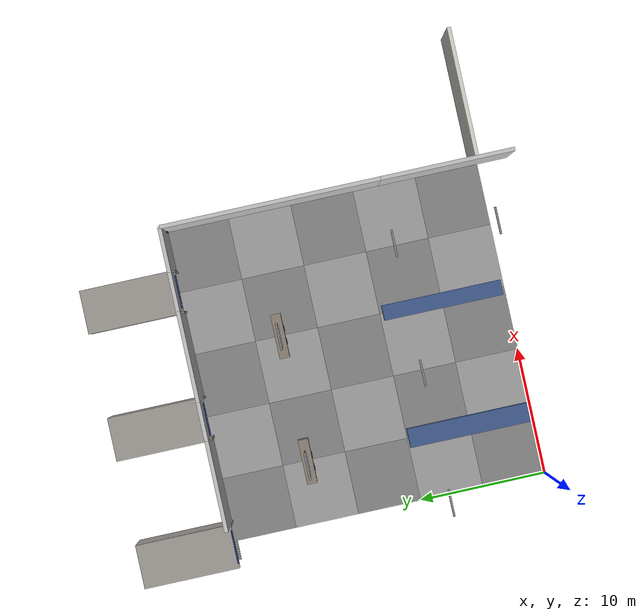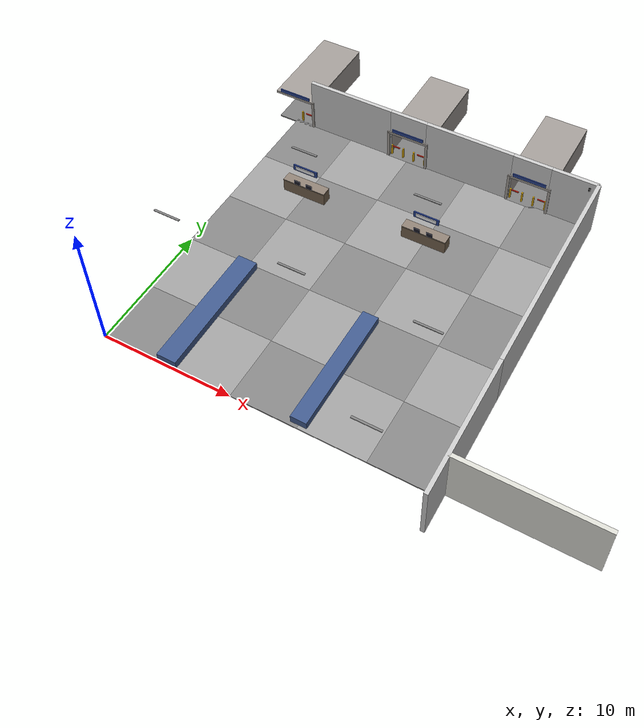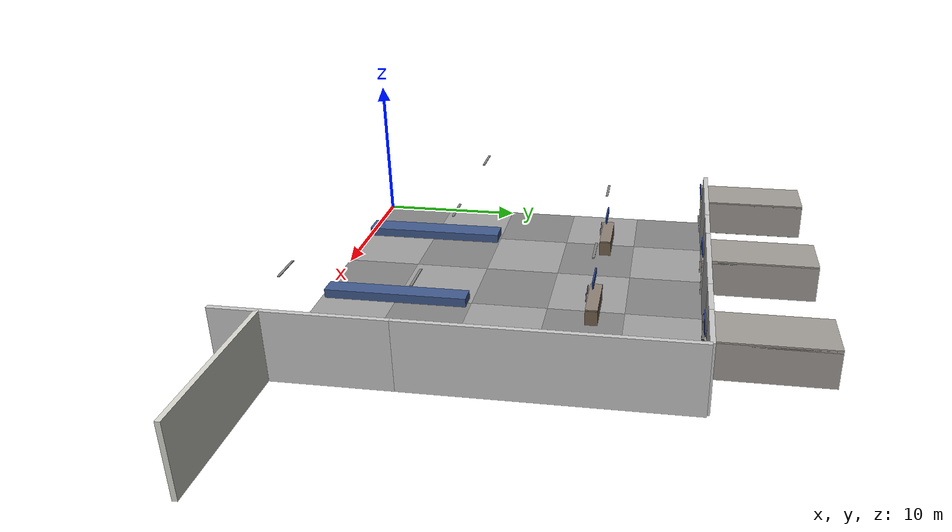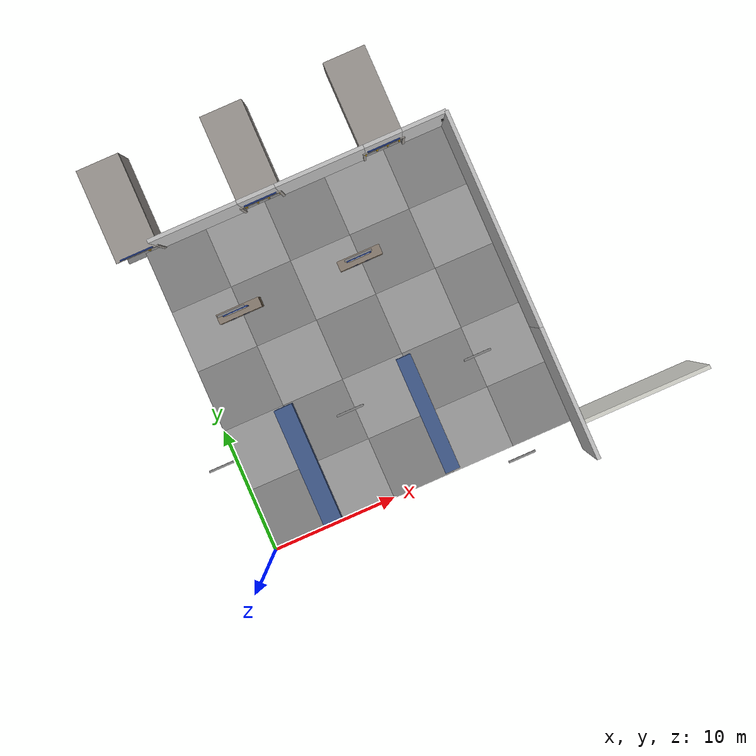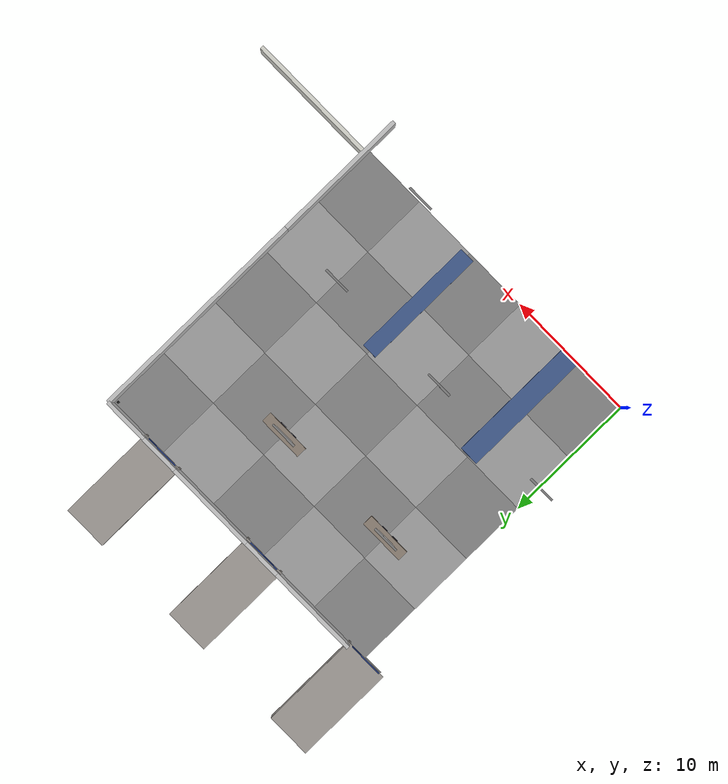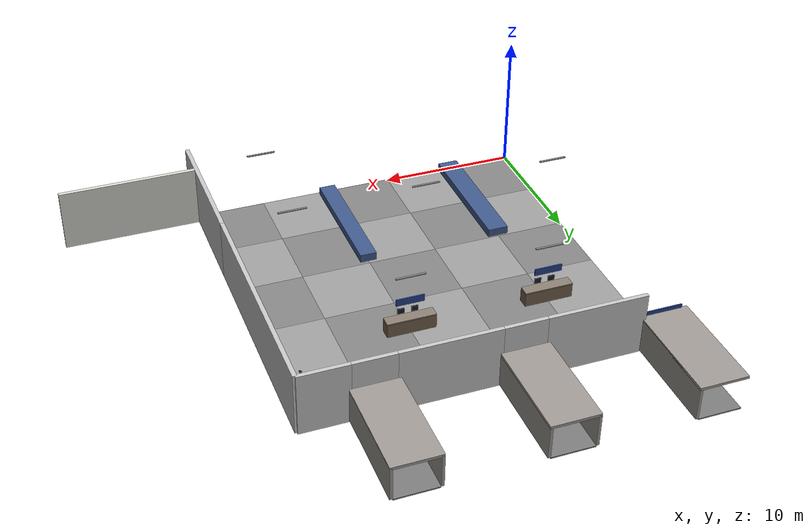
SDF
<sdf version="1.10">
 <world name="airport_terminal_world">
  <model name="gate_a3_queue_line1">
   <static>true</static>
   <pose>5.0 14.0 0.06 0 0 0</pose>
   <link name="link">
    <visual name="vis">
     <geometry><box><size>4.0 0.05 0.01</size></box></geometry>
     <material><ambient>0.95 0.85 0.1 1.0</ambient><diffuse>0.95 0.85 0.1 1.0</diffuse></material>
    </visual>
   </link>
  </model>
  <model name="gate_a3_queue_line2">
   <static>true</static>
   <pose>5.0 13.0 0.06 0 0 0</pose>
   <link name="link">
    <visual name="vis">
     <geometry><box><size>4.0 0.05 0.01</size></box></geometry>
     <material><ambient>0.95 0.85 0.1 1.0</ambient><diffuse>0.95 0.85 0.1 1.0</diffuse></material>
    </visual>
   </link>
  </model>
  <model name="gate_a3_queue_line3">
   <static>true</static>
   <pose>5.0 12.0 0.06 0 0 0</pose>
   <link name="link">
    <visual name="vis">
     <geometry><box><size>4.0 0.05 0.01</size></box></geometry>
     <material><ambient>0.95 0.85 0.1 1.0</ambient><diffuse>0.95 0.85 0.1 1.0</diffuse></material>
    </visual>
   </link>
  </model>
  <model name="gate_a3_queue_side_l">
   <static>true</static>
   <pose>3.0 13.0 0.06 0 0 0</pose>
   <link name="link">
    <visual name="vis">
     <geometry><box><size>0.05 2.0 0.01</size></box></geometry>
     <material><ambient>0.95 0.85 0.1 1.0</ambient><diffuse>0.95 0.85 0.1 1.0</diffuse></material>
    </visual>
   </link>
  </model>
  <model name="gate_a3_queue_side_r">
   <static>true</static>
   <pose>7.0 13.0 0.06 0 0 0</pose>
   <link name="link">
    <visual name="vis">
     <geometry><box><size>0.05 2.0 0.01</size></box></geometry>
     <material><ambient>0.95 0.85 0.1 1.0</ambient><diffuse>0.95 0.85 0.1 1.0</diffuse></material>
    </visual>
   </link>
  </model>
  <model name="gate_a4_queue_line1">
   <static>true</static>
   <pose>15.0 14.0 0.06 0 0 0</pose>
   <link name="link">
    <visual name="vis">
     <geometry><box><size>4.0 0.05 0.01</size></box></geometry>
     <material><ambient>0.95 0.85 0.1 1.0</ambient><diffuse>0.95 0.85 0.1 1.0</diffuse></material>
    </visual>
   </link>
  </model>
  <model name="gate_a4_queue_line2">
   <static>true</static>
   <pose>15.0 13.0 0.06 0 0 0</pose>
   <link name="link">
    <visual name="vis">
     <geometry><box><size>4.0 0.05 0.01</size></box></geometry>
     <material><ambient>0.95 0.85 0.1 1.0</ambient><diffuse>0.95 0.85 0.1 1.0</diffuse></material>
    </visual>
   </link>
  </model>
  <model name="gate_a4_queue_line3">
   <static>true</static>
   <pose>15.0 12.0 0.06 0 0 0</pose>
   <link name="link">
    <visual name="vis">
     <geometry><box><size>4.0 0.05 0.01</size></box></geometry>
     <material><ambient>0.95 0.85 0.1 1.0</ambient><diffuse>0.95 0.85 0.1 1.0</diffuse></material>
    </visual>
   </link>
  </model>
  <model name="gate_a4_queue_side_l">
   <static>true</static>
   <pose>13.0 13.0 0.06 0 0 0</pose>
   <link name="link">
    <visual name="vis">
     <geometry><box><size>0.05 2.0 0.01</size></box></geometry>
     <material><ambient>0.95 0.85 0.1 1.0</ambient><diffuse>0.95 0.85 0.1 1.0</diffuse></material>
    </visual>
   </link>
  </model>
  <model name="gate_a4_queue_side_r">
   <static>true</static>
   <pose>17.0 13.0 0.06 0 0 0</pose>
   <link name="link">
    <visual name="vis">
     <geometry><box><size>0.05 2.0 0.01</size></box></geometry>
     <material><ambient>0.95 0.85 0.1 1.0</ambient><diffuse>0.95 0.85 0.1 1.0</diffuse></material>
    </visual>
   </link>
  </model>
  <model name="vtile_5_5">
   <static>true</static>
   <pose>2.5 2.5 0.05 0 0 0</pose>
   <link name="link">
    <visual name="vis">
     <geometry><box><size>5.0 5.0 0.1</size></box></geometry>
     <material><ambient>0.52 0.52 0.52 1.0</ambient><diffuse>0.52 0.52 0.52 1.0</diffuse></material>
    </visual>
   </link>
  </model>
  <model name="vtile_5_6">
   <static>true</static>
   <pose>2.5 7.5 0.05 0 0 0</pose>
   <link name="link">
    <visual name="vis">
     <geometry><box><size>5.0 5.0 0.1</size></box></geometry>
     <material><ambient>0.62 0.62 0.62 1.0</ambient><diffuse>0.62 0.62 0.62 1.0</diffuse></material>
    </visual>
   </link>
  </model>
  <model name="vtile_5_7">
   <static>true</static>
   <pose>2.5 12.5 0.05 0 0 0</pose>
   <link name="link">
    <visual name="vis">
     <geometry><box><size>5.0 5.0 0.1</size></box></geometry>
     <material><ambient>0.52 0.52 0.52 1.0</ambient><diffuse>0.52 0.52 0.52 1.0</diffuse></material>
    </visual>
   </link>
  </model>
  <model name="vtile_5_8">
   <static>true</static>
   <pose>2.5 17.5 0.05 0 0 0</pose>
   <link name="link">
    <visual name="vis">
     <geometry><box><size>5.0 5.0 0.1</size></box></geometry>
     <material><ambient>0.62 0.62 0.62 1.0</ambient><diffuse>0.62 0.62 0.62 1.0</diffuse></material>
    </visual>
   </link>
  </model>
  <model name="vtile_5_9">
   <static>true</static>
   <pose>2.5 22.5 0.05 0 0 0</pose>
   <link name="link">
    <visual name="vis">
     <geometry><box><size>5.0 5.0 0.1</size></box></geometry>
     <material><ambient>0.52 0.52 0.52 1.0</ambient><diffuse>0.52 0.52 0.52 1.0</diffuse></material>
    </visual>
   </link>
  </model>
  <model name="vtile_6_5">
   <static>true</static>
   <pose>7.5 2.5 0.05 0 0 0</pose>
   <link name="link">
    <visual name="vis">
     <geometry><box><size>5.0 5.0 0.1</size></box></geometry>
     <material><ambient>0.62 0.62 0.62 1.0</ambient><diffuse>0.62 0.62 0.62 1.0</diffuse></material>
    </visual>
   </link>
  </model>
  <model name="vtile_6_6">
   <static>true</static>
   <pose>7.5 7.5 0.05 0 0 0</pose>
   <link name="link">
    <visual name="vis">
     <geometry><box><size>5.0 5.0 0.1</size></box></geometry>
     <material><ambient>0.52 0.52 0.52 1.0</ambient><diffuse>0.52 0.52 0.52 1.0</diffuse></material>
    </visual>
   </link>
  </model>
  <model name="vtile_6_7">
   <static>true</static>
   <pose>7.5 12.5 0.05 0 0 0</pose>
   <link name="link">
    <visual name="vis">
     <geometry><box><size>5.0 5.0 0.1</size></box></geometry>
     <material><ambient>0.62 0.62 0.62 1.0</ambient><diffuse>0.62 0.62 0.62 1.0</diffuse></material>
    </visual>
   </link>
  </model>
  <model name="vtile_6_8">
   <static>true</static>
   <pose>7.5 17.5 0.05 0 0 0</pose>
   <link name="link">
    <visual name="vis">
     <geometry><box><size>5.0 5.0 0.1</size></box></geometry>
     <material><ambient>0.52 0.52 0.52 1.0</ambient><diffuse>0.52 0.52 0.52 1.0</diffuse></material>
    </visual>
   </link>
  </model>
  <model name="vtile_6_9">
   <static>true</static>
   <pose>7.5 22.5 0.05 0 0 0</pose>
   <link name="link">
    <visual name="vis">
     <geometry><box><size>5.0 5.0 0.1</size></box></geometry>
     <material><ambient>0.62 0.62 0.62 1.0</ambient><diffuse>0.62 0.62 0.62 1.0</diffuse></material>
    </visual>
   </link>
  </model>
  <model name="vtile_7_5">
   <static>true</static>
   <pose>12.5 2.5 0.05 0 0 0</pose>
   <link name="link">
    <visual name="vis">
     <geometry><box><size>5.0 5.0 0.1</size></box></geometry>
     <material><ambient>0.52 0.52 0.52 1.0</ambient><diffuse>0.52 0.52 0.52 1.0</diffuse></material>
    </visual>
   </link>
  </model>
  <model name="vtile_7_6">
   <static>true</static>
   <pose>12.5 7.5 0.05 0 0 0</pose>
   <link name="link">
    <visual name="vis">
     <geometry><box><size>5.0 5.0 0.1</size></box></geometry>
     <material><ambient>0.62 0.62 0.62 1.0</ambient><diffuse>0.62 0.62 0.62 1.0</diffuse></material>
    </visual>
   </link>
  </model>
  <model name="vtile_7_7">
   <static>true</static>
   <pose>12.5 12.5 0.05 0 0 0</pose>
   <link name="link">
    <visual name="vis">
     <geometry><box><size>5.0 5.0 0.1</size></box></geometry>
     <material><ambient>0.52 0.52 0.52 1.0</ambient><diffuse>0.52 0.52 0.52 1.0</diffuse></material>
    </visual>
   </link>
  </model>
  <model name="vtile_7_8">
   <static>true</static>
   <pose>12.5 17.5 0.05 0 0 0</pose>
   <link name="link">
    <visual name="vis">
     <geometry><box><size>5.0 5.0 0.1</size></box></geometry>
     <material><ambient>0.62 0.62 0.62 1.0</ambient><diffuse>0.62 0.62 0.62 1.0</diffuse></material>
    </visual>
   </link>
  </model>
  <model name="vtile_7_9">
   <static>true</static>
   <pose>12.5 22.5 0.05 0 0 0</pose>
   <link name="link">
    <visual name="vis">
     <geometry><box><size>5.0 5.0 0.1</size></box></geometry>
     <material><ambient>0.52 0.52 0.52 1.0</ambient><diffuse>0.52 0.52 0.52 1.0</diffuse></material>
    </visual>
   </link>
  </model>
  <model name="vtile_8_5">
   <static>true</static>
   <pose>17.5 2.5 0.05 0 0 0</pose>
   <link name="link">
    <visual name="vis">
     <geometry><box><size>5.0 5.0 0.1</size></box></geometry>
     <material><ambient>0.62 0.62 0.62 1.0</ambient><diffuse>0.62 0.62 0.62 1.0</diffuse></material>
    </visual>
   </link>
  </model>
  <model name="vtile_8_6">
   <static>true</static>
   <pose>17.5 7.5 0.05 0 0 0</pose>
   <link name="link">
    <visual name="vis">
     <geometry><box><size>5.0 5.0 0.1</size></box></geometry>
     <material><ambient>0.52 0.52 0.52 1.0</ambient><diffuse>0.52 0.52 0.52 1.0</diffuse></material>
    </visual>
   </link>
  </model>
  <model name="vtile_8_7">
   <static>true</static>
   <pose>17.5 12.5 0.05 0 0 0</pose>
   <link name="link">
    <visual name="vis">
     <geometry><box><size>5.0 5.0 0.1</size></box></geometry>
     <material><ambient>0.62 0.62 0.62 1.0</ambient><diffuse>0.62 0.62 0.62 1.0</diffuse></material>
    </visual>
   </link>
  </model>
  <model name="vtile_8_8">
   <static>true</static>
   <pose>17.5 17.5 0.05 0 0 0</pose>
   <link name="link">
    <visual name="vis">
     <geometry><box><size>5.0 5.0 0.1</size></box></geometry>
     <material><ambient>0.52 0.52 0.52 1.0</ambient><diffuse>0.52 0.52 0.52 1.0</diffuse></material>
    </visual>
   </link>
  </model>
  <model name="vtile_8_9">
   <static>true</static>
   <pose>17.5 22.5 0.05 0 0 0</pose>
   <link name="link">
    <visual name="vis">
     <geometry><box><size>5.0 5.0 0.1</size></box></geometry>
     <material><ambient>0.62 0.62 0.62 1.0</ambient><diffuse>0.62 0.62 0.62 1.0</diffuse></material>
    </visual>
   </link>
  </model>
  <model name="vtile_9_5">
   <static>true</static>
   <pose>22.5 2.5 0.05 0 0 0</pose>
   <link name="link">
    <visual name="vis">
     <geometry><box><size>5.0 5.0 0.1</size></box></geometry>
     <material><ambient>0.52 0.52 0.52 1.0</ambient><diffuse>0.52 0.52 0.52 1.0</diffuse></material>
    </visual>
   </link>
  </model>
  <model name="vtile_9_6">
   <static>true</static>
   <pose>22.5 7.5 0.05 0 0 0</pose>
   <link name="link">
    <visual name="vis">
     <geometry><box><size>5.0 5.0 0.1</size></box></geometry>
     <material><ambient>0.62 0.62 0.62 1.0</ambient><diffuse>0.62 0.62 0.62 1.0</diffuse></material>
    </visual>
   </link>
  </model>
  <model name="vtile_9_7">
   <static>true</static>
   <pose>22.5 12.5 0.05 0 0 0</pose>
   <link name="link">
    <visual name="vis">
     <geometry><box><size>5.0 5.0 0.1</size></box></geometry>
     <material><ambient>0.52 0.52 0.52 1.0</ambient><diffuse>0.52 0.52 0.52 1.0</diffuse></material>
    </visual>
   </link>
  </model>
  <model name="vtile_9_8">
   <static>true</static>
   <pose>22.5 17.5 0.05 0 0 0</pose>
   <link name="link">
    <visual name="vis">
     <geometry><box><size>5.0 5.0 0.1</size></box></geometry>
     <material><ambient>0.62 0.62 0.62 1.0</ambient><diffuse>0.62 0.62 0.62 1.0</diffuse></material>
    </visual>
   </link>
  </model>
  <model name="vtile_9_9">
   <static>true</static>
   <pose>22.5 22.5 0.05 0 0 0</pose>
   <link name="link">
    <visual name="vis">
     <geometry><box><size>5.0 5.0 0.1</size></box></geometry>
     <material><ambient>0.52 0.52 0.52 1.0</ambient><diffuse>0.52 0.52 0.52 1.0</diffuse></material>
    </visual>
   </link>
  </model>
  <model name="wall_north_3">
   <static>true</static>
   <pose>5.0 25.0 2.25 0 0 0</pose>
   <link name="link">
    <collision name="col"><geometry><box><size>7.0 0.3 4.5</size></box></geometry></collision>
    <visual name="vis">
     <geometry><box><size>7.0 0.3 4.5</size></box></geometry>
     <material><ambient>0.78 0.78 0.78 1.0</ambient><diffuse>0.78 0.78 0.78 1.0</diffuse></material>
    </visual>
   </link>
  </model>
  <model name="wall_north_4">
   <static>true</static>
   <pose>15.0 25.0 2.25 0 0 0</pose>
   <link name="link">
    <collision name="col"><geometry><box><size>7.0 0.3 4.5</size></box></geometry></collision>
    <visual name="vis">
     <geometry><box><size>7.0 0.3 4.5</size></box></geometry>
     <material><ambient>0.78 0.78 0.78 1.0</ambient><diffuse>0.78 0.78 0.78 1.0</diffuse></material>
    </visual>
   </link>
  </model>
  <model name="wall_north_5">
   <static>true</static>
   <pose>23.25 25.0 2.25 0 0 0</pose>
   <link name="link">
    <collision name="col"><geometry><box><size>3.5 0.3 4.5</size></box></geometry></collision>
    <visual name="vis">
     <geometry><box><size>3.5 0.3 4.5</size></box></geometry>
     <material><ambient>0.78 0.78 0.78 1.0</ambient><diffuse>0.78 0.78 0.78 1.0</diffuse></material>
    </visual>
   </link>
  </model>
  <model name="wall_north_top_10">
   <static>true</static>
   <pose>10.0 25.0 3.5 0 0 0</pose>
   <link name="link">
    <collision name="col"><geometry><box><size>3.0 0.3 2.0</size></box></geometry></collision>
    <visual name="vis">
     <geometry><box><size>3.0 0.3 2.0</size></box></geometry>
     <material><ambient>0.78 0.78 0.78 1.0</ambient><diffuse>0.78 0.78 0.78 1.0</diffuse></material>
    </visual>
   </link>
  </model>
  <model name="wall_north_top_20">
   <static>true</static>
   <pose>20.0 25.0 3.5 0 0 0</pose>
   <link name="link">
    <collision name="col"><geometry><box><size>3.0 0.3 2.0</size></box></geometry></collision>
    <visual name="vis">
     <geometry><box><size>3.0 0.3 2.0</size></box></geometry>
     <material><ambient>0.78 0.78 0.78 1.0</ambient><diffuse>0.78 0.78 0.78 1.0</diffuse></material>
    </visual>
   </link>
  </model>
  <model name="wall_east_s2_seg4">
   <static>true</static>
   <pose>25.0 2.775 2.25 0 0 0</pose>
   <link name="link">
    <collision name="col"><geometry><box><size>0.3 10.35 4.5</size></box></geometry></collision>
    <visual name="vis">
     <geometry><box><size>0.3 10.35 4.5</size></box></geometry>
     <material><ambient>0.78 0.78 0.78 1.0</ambient><diffuse>0.78 0.78 0.78 1.0</diffuse></material>
    </visual>
   </link>
  </model>
  <model name="toilet_room_wall_north">
   <static>true</static>
   <pose>30.0 0.5 2.25 0 0 0</pose>
   <link name="link">
    <collision name="col"><geometry><box><size>10.0 0.3 4.5</size></box></geometry></collision>
    <visual name="vis">
     <geometry><box><size>10.0 0.3 4.5</size></box></geometry>
     <material><ambient>0.85 0.85 0.82 1.0</ambient><diffuse>0.85 0.85 0.82 1.0</diffuse></material>
    </visual>
   </link>
  </model>
  <model name="wall_east_n">
   <static>true</static>
   <pose>25.0 16.475 2.25 0 0 0</pose>
   <link name="link">
    <collision name="col"><geometry><box><size>0.3 17.05 4.5</size></box></geometry></collision>
    <visual name="vis">
     <geometry><box><size>0.3 17.05 4.5</size></box></geometry>
     <material><ambient>0.78 0.78 0.78 1.0</ambient><diffuse>0.78 0.78 0.78 1.0</diffuse></material>
    </visual>
   </link>
  </model>
  <model name="lamp_b_20_strip">
   <static>true</static>
   <pose>20.0 0 4.42 0 0 0</pose>
   <link name="link">
    <visual name="strip">
     <geometry><box><size>2.0 0.12 0.04</size></box></geometry>
     <material>
      <ambient>0.95 0.95 0.88 1.0</ambient>
      <diffuse>0.95 0.95 0.88 1.0</diffuse>
      <emissive>0.35 0.35 0.3 1.0</emissive>
     </material>
    </visual>
    <visual name="housing">
     <pose>0 0 0.03 0 0 0</pose>
     <geometry><box><size>2.1 0.16 0.06</size></box></geometry>
     <material><ambient>0.5 0.5 0.5 1.0</ambient><diffuse>0.5 0.5 0.5 1.0</diffuse></material>
    </visual>
   </link>
  </model>
  <model name="lamp_c_0_strip">
   <static>true</static>
   <pose>0 8.0 4.42 0 0 0</pose>
   <link name="link">
    <visual name="strip">
     <geometry><box><size>2.0 0.12 0.04</size></box></geometry>
     <material>
      <ambient>0.95 0.95 0.88 1.0</ambient>
      <diffuse>0.95 0.95 0.88 1.0</diffuse>
      <emissive>0.35 0.35 0.3 1.0</emissive>
     </material>
    </visual>
    <visual name="housing">
     <pose>0 0 0.03 0 0 0</pose>
     <geometry><box><size>2.1 0.16 0.06</size></box></geometry>
     <material><ambient>0.5 0.5 0.5 1.0</ambient><diffuse>0.5 0.5 0.5 1.0</diffuse></material>
    </visual>
   </link>
  </model>
  <model name="lamp_c_10_strip">
   <static>true</static>
   <pose>10.0 8.0 4.42 0 0 0</pose>
   <link name="link">
    <visual name="strip">
     <geometry><box><size>2.0 0.12 0.04</size></box></geometry>
     <material>
      <ambient>0.95 0.95 0.88 1.0</ambient>
      <diffuse>0.95 0.95 0.88 1.0</diffuse>
      <emissive>0.35 0.35 0.3 1.0</emissive>
     </material>
    </visual>
    <visual name="housing">
     <pose>0 0 0.03 0 0 0</pose>
     <geometry><box><size>2.1 0.16 0.06</size></box></geometry>
     <material><ambient>0.5 0.5 0.5 1.0</ambient><diffuse>0.5 0.5 0.5 1.0</diffuse></material>
    </visual>
   </link>
  </model>
  <model name="lamp_c_20_strip">
   <static>true</static>
   <pose>20.0 8.0 4.42 0 0 0</pose>
   <link name="link">
    <visual name="strip">
     <geometry><box><size>2.0 0.12 0.04</size></box></geometry>
     <material>
      <ambient>0.95 0.95 0.88 1.0</ambient>
      <diffuse>0.95 0.95 0.88 1.0</diffuse>
      <emissive>0.35 0.35 0.3 1.0</emissive>
     </material>
    </visual>
    <visual name="housing">
     <pose>0 0 0.03 0 0 0</pose>
     <geometry><box><size>2.1 0.16 0.06</size></box></geometry>
     <material><ambient>0.5 0.5 0.5 1.0</ambient><diffuse>0.5 0.5 0.5 1.0</diffuse></material>
    </visual>
   </link>
  </model>
  <model name="lamp_gate_a3_strip">
   <static>true</static>
   <pose>5.0 18.0 4.42 0 0 0</pose>
   <link name="link">
    <visual name="strip">
     <geometry><box><size>2.0 0.12 0.04</size></box></geometry>
     <material>
      <ambient>0.95 0.95 0.88 1.0</ambient>
      <diffuse>0.95 0.95 0.88 1.0</diffuse>
      <emissive>0.35 0.35 0.3 1.0</emissive>
     </material>
    </visual>
    <visual name="housing">
     <pose>0 0 0.03 0 0 0</pose>
     <geometry><box><size>2.1 0.16 0.06</size></box></geometry>
     <material><ambient>0.5 0.5 0.5 1.0</ambient><diffuse>0.5 0.5 0.5 1.0</diffuse></material>
    </visual>
   </link>
  </model>
  <model name="lamp_gate_a4_strip">
   <static>true</static>
   <pose>15.0 18.0 4.42 0 0 0</pose>
   <link name="link">
    <visual name="strip">
     <geometry><box><size>2.0 0.12 0.04</size></box></geometry>
     <material>
      <ambient>0.95 0.95 0.88 1.0</ambient>
      <diffuse>0.95 0.95 0.88 1.0</diffuse>
      <emissive>0.35 0.35 0.3 1.0</emissive>
     </material>
    </visual>
    <visual name="housing">
     <pose>0 0 0.03 0 0 0</pose>
     <geometry><box><size>2.1 0.16 0.06</size></box></geometry>
     <material><ambient>0.5 0.5 0.5 1.0</ambient><diffuse>0.5 0.5 0.5 1.0</diffuse></material>
    </visual>
   </link>
  </model>
  <model name="gate_a3_counter">
   <static>true</static>
   <pose>5.0 18.0 0.55 0 0 0</pose>
   <link name="link">
    <collision name="col"><geometry><box><size>3.5 0.8 1.1</size></box></geometry></collision>
    <visual name="vis">
     <geometry><box><size>3.5 0.8 1.1</size></box></geometry>
     <material><ambient>0.45 0.38 0.3 1.0</ambient><diffuse>0.45 0.38 0.3 1.0</diffuse></material>
    </visual>
   </link>
  </model>
  <model name="gate_a3_counter_top">
   <static>true</static>
   <pose>5.0 18.0 1.15 0 0 0</pose>
   <link name="link">
    <collision name="col"><geometry><box><size>3.5 0.8 0.08</size></box></geometry></collision>
    <visual name="vis">
     <geometry><box><size>3.5 0.8 0.08</size></box></geometry>
     <material><ambient>0.55 0.5 0.45 1.0</ambient><diffuse>0.55 0.5 0.45 1.0</diffuse></material>
    </visual>
   </link>
  </model>
  <model name="gate_a3_monitor">
   <static>true</static>
   <pose>5.5 17.55 1.4 0 0 0</pose>
   <link name="link">
    <visual name="vis">
     <geometry><box><size>0.5 0.05 0.4</size></box></geometry>
     <material><ambient>0.1 0.1 0.15 1.0</ambient><diffuse>0.1 0.1 0.15 1.0</diffuse></material>
    </visual>
   </link>
  </model>
  <model name="gate_a3_monitor2">
   <static>true</static>
   <pose>4.5 17.55 1.4 0 0 0</pose>
   <link name="link">
    <visual name="vis">
     <geometry><box><size>0.5 0.05 0.4</size></box></geometry>
     <material><ambient>0.1 0.1 0.15 1.0</ambient><diffuse>0.1 0.1 0.15 1.0</diffuse></material>
    </visual>
   </link>
  </model>
  <model name="gate_a3_sign">
   <static>true</static>
   <pose>5.0 18.0 2.5 0 0 0</pose>
   <link name="link">
    <visual name="vis">
     <geometry><box><size>2.0 0.1 0.5</size></box></geometry>
     <material><ambient>0.15 0.25 0.55 1.0</ambient><diffuse>0.15 0.25 0.55 1.0</diffuse></material>
    </visual>
   </link>
  </model>
  <model name="gate_a3_sign_text">
   <static>true</static>
   <pose>5.0 17.94 2.5 0 0 0</pose>
   <link name="link">
    <visual name="vis">
     <geometry><box><size>1.6 0.05 0.3</size></box></geometry>
     <material><ambient>0.9 0.9 0.9 1.0</ambient><diffuse>0.9 0.9 0.9 1.0</diffuse></material>
    </visual>
   </link>
  </model>
  <model name="gate_a4_counter">
   <static>true</static>
   <pose>15.0 18.0 0.55 0 0 0</pose>
   <link name="link">
    <collision name="col"><geometry><box><size>3.5 0.8 1.1</size></box></geometry></collision>
    <visual name="vis">
     <geometry><box><size>3.5 0.8 1.1</size></box></geometry>
     <material><ambient>0.45 0.38 0.3 1.0</ambient><diffuse>0.45 0.38 0.3 1.0</diffuse></material>
    </visual>
   </link>
  </model>
  <model name="gate_a4_counter_top">
   <static>true</static>
   <pose>15.0 18.0 1.15 0 0 0</pose>
   <link name="link">
    <collision name="col"><geometry><box><size>3.5 0.8 0.08</size></box></geometry></collision>
    <visual name="vis">
     <geometry><box><size>3.5 0.8 0.08</size></box></geometry>
     <material><ambient>0.55 0.5 0.45 1.0</ambient><diffuse>0.55 0.5 0.45 1.0</diffuse></material>
    </visual>
   </link>
  </model>
  <model name="gate_a4_monitor">
   <static>true</static>
   <pose>15.5 17.55 1.4 0 0 0</pose>
   <link name="link">
    <visual name="vis">
     <geometry><box><size>0.5 0.05 0.4</size></box></geometry>
     <material><ambient>0.1 0.1 0.15 1.0</ambient><diffuse>0.1 0.1 0.15 1.0</diffuse></material>
    </visual>
   </link>
  </model>
  <model name="gate_a4_monitor2">
   <static>true</static>
   <pose>14.5 17.55 1.4 0 0 0</pose>
   <link name="link">
    <visual name="vis">
     <geometry><box><size>0.5 0.05 0.4</size></box></geometry>
     <material><ambient>0.1 0.1 0.15 1.0</ambient><diffuse>0.1 0.1 0.15 1.0</diffuse></material>
    </visual>
   </link>
  </model>
  <model name="gate_a4_sign">
   <static>true</static>
   <pose>15.0 18.0 2.5 0 0 0</pose>
   <link name="link">
    <visual name="vis">
     <geometry><box><size>2.0 0.1 0.5</size></box></geometry>
     <material><ambient>0.15 0.25 0.55 1.0</ambient><diffuse>0.15 0.25 0.55 1.0</diffuse></material>
    </visual>
   </link>
  </model>
  <model name="gate_a4_sign_text">
   <static>true</static>
   <pose>15.0 17.94 2.5 0 0 0</pose>
   <link name="link">
    <visual name="vis">
     <geometry><box><size>1.6 0.05 0.3</size></box></geometry>
     <material><ambient>0.9 0.9 0.9 1.0</ambient><diffuse>0.9 0.9 0.9 1.0</diffuse></material>
    </visual>
   </link>
  </model>
  <model name="camera_ne_mount">
   <static>true</static>
   <pose>24.5 24.5 4.3 0 0 0</pose>
   <link name="link">
    <visual name="vis">
     <geometry><box><size>0.15 0.15 0.08</size></box></geometry>
     <material><ambient>0.1 0.1 0.1 1.0</ambient><diffuse>0.1 0.1 0.1 1.0</diffuse></material>
    </visual>
   </link>
  </model>
  <model name="camera_ne_body">
   <static>true</static>
   <pose>24.5 24.5 4.15 0 1.9199 -2.3562</pose>
   <link name="link">
    <visual name="vis">
     <geometry><cylinder><radius>0.05</radius><length>0.16</length></cylinder></geometry>
     <material><ambient>0.12 0.12 0.12 1.0</ambient><diffuse>0.12 0.12 0.12 1.0</diffuse></material>
    </visual>
    <sensor name="camera_ne" type="camera">
     <pose>0 0 0 0 -1.5708 0</pose>
     <topic>/surveillance/ne</topic>
     <update_rate>10.0</update_rate>
     <camera>
      <horizontal_fov>1.9199</horizontal_fov>
      <image><width>1280.0</width><height>720.0</height></image>
      <clip><near>0.1</near><far>70.0</far></clip>
     </camera>
     <always_on>false</always_on>
     <visualize>false</visualize>
    </sensor>
   </link>
  </model>
  <model name="tunnel_a2_wall_r">
   <static>true</static>
   <pose>1.6 28.5 1.3 0 0 0</pose>
   <link name="link">
    <collision name="col"><geometry><box><size>0.2 7.5 2.4</size></box></geometry></collision>
    <visual name="vis">
     <geometry><box><size>0.2 7.5 2.4</size></box></geometry>
     <material><ambient>0.62 0.6 0.58 1.0</ambient><diffuse>0.62 0.6 0.58 1.0</diffuse></material>
    </visual>
   </link>
  </model>
  <model name="tunnel_a2_roof">
   <static>true</static>
   <pose>0 28.5 2.5 0 0 0</pose>
   <link name="link">
    <collision name="col"><geometry><box><size>3.4 7.5 0.2</size></box></geometry></collision>
    <visual name="vis">
     <geometry><box><size>3.4 7.5 0.2</size></box></geometry>
     <material><ambient>0.62 0.6 0.58 1.0</ambient><diffuse>0.62 0.6 0.58 1.0</diffuse></material>
    </visual>
   </link>
  </model>
  <model name="tunnel_a2_floor">
   <static>true</static>
   <pose>0 28.5 0.05 0 0 0</pose>
   <link name="link">
    <collision name="col"><geometry><box><size>3.0 7.5 0.1</size></box></geometry></collision>
    <visual name="vis">
     <geometry><box><size>3.0 7.5 0.1</size></box></geometry>
     <material><ambient>0.48 0.48 0.48 1</ambient><diffuse>0.48 0.48 0.48 1</diffuse></material>
    </visual>
   </link>
  </model>
  <model name="tunnel_a2_sign">
   <static>true</static>
   <pose>0 24.8 2.7 0 0 0</pose>
   <link name="link">
    <visual name="vis">
     <geometry><box><size>2.6 0.08 0.35</size></box></geometry>
     <material><ambient>0.15 0.25 0.55 1.0</ambient><diffuse>0.15 0.25 0.55 1.0</diffuse></material>
    </visual>
   </link>
  </model>
  <model name="tunnel_a3_wall_l">
   <static>true</static>
   <pose>8.4 28.5 1.3 0 0 0</pose>
   <link name="link">
    <collision name="col"><geometry><box><size>0.2 7.5 2.4</size></box></geometry></collision>
    <visual name="vis">
     <geometry><box><size>0.2 7.5 2.4</size></box></geometry>
     <material><ambient>0.62 0.6 0.58 1.0</ambient><diffuse>0.62 0.6 0.58 1.0</diffuse></material>
    </visual>
   </link>
  </model>
  <model name="tunnel_a3_wall_r">
   <static>true</static>
   <pose>11.6 28.5 1.3 0 0 0</pose>
   <link name="link">
    <collision name="col"><geometry><box><size>0.2 7.5 2.4</size></box></geometry></collision>
    <visual name="vis">
     <geometry><box><size>0.2 7.5 2.4</size></box></geometry>
     <material><ambient>0.62 0.6 0.58 1.0</ambient><diffuse>0.62 0.6 0.58 1.0</diffuse></material>
    </visual>
   </link>
  </model>
  <model name="tunnel_a3_roof">
   <static>true</static>
   <pose>10.0 28.5 2.5 0 0 0</pose>
   <link name="link">
    <collision name="col"><geometry><box><size>3.4 7.5 0.2</size></box></geometry></collision>
    <visual name="vis">
     <geometry><box><size>3.4 7.5 0.2</size></box></geometry>
     <material><ambient>0.62 0.6 0.58 1.0</ambient><diffuse>0.62 0.6 0.58 1.0</diffuse></material>
    </visual>
   </link>
  </model>
  <model name="tunnel_a3_floor">
   <static>true</static>
   <pose>10 28.5 0.05 0 0 0</pose>
   <link name="link">
    <collision name="col"><geometry><box><size>3.0 7.5 0.1</size></box></geometry></collision>
    <visual name="vis">
     <geometry><box><size>3.0 7.5 0.1</size></box></geometry>
     <material><ambient>0.48 0.48 0.48 1</ambient><diffuse>0.48 0.48 0.48 1</diffuse></material>
    </visual>
   </link>
  </model>
  <model name="tunnel_a3_sign">
   <static>true</static>
   <pose>10.0 24.8 2.7 0 0 0</pose>
   <link name="link">
    <visual name="vis">
     <geometry><box><size>2.6 0.08 0.35</size></box></geometry>
     <material><ambient>0.15 0.25 0.55 1.0</ambient><diffuse>0.15 0.25 0.55 1.0</diffuse></material>
    </visual>
   </link>
  </model>
  <model name="tunnel_a4_wall_l">
   <static>true</static>
   <pose>18.4 28.5 1.3 0 0 0</pose>
   <link name="link">
    <collision name="col"><geometry><box><size>0.2 7.5 2.4</size></box></geometry></collision>
    <visual name="vis">
     <geometry><box><size>0.2 7.5 2.4</size></box></geometry>
     <material><ambient>0.62 0.6 0.58 1.0</ambient><diffuse>0.62 0.6 0.58 1.0</diffuse></material>
    </visual>
   </link>
  </model>
  <model name="tunnel_a4_wall_r">
   <static>true</static>
   <pose>21.6 28.5 1.3 0 0 0</pose>
   <link name="link">
    <collision name="col"><geometry><box><size>0.2 7.5 2.4</size></box></geometry></collision>
    <visual name="vis">
     <geometry><box><size>0.2 7.5 2.4</size></box></geometry>
     <material><ambient>0.62 0.6 0.58 1.0</ambient><diffuse>0.62 0.6 0.58 1.0</diffuse></material>
    </visual>
   </link>
  </model>
  <model name="tunnel_a4_roof">
   <static>true</static>
   <pose>20.0 28.5 2.5 0 0 0</pose>
   <link name="link">
    <collision name="col"><geometry><box><size>3.4 7.5 0.2</size></box></geometry></collision>
    <visual name="vis">
     <geometry><box><size>3.4 7.5 0.2</size></box></geometry>
     <material><ambient>0.62 0.6 0.58 1.0</ambient><diffuse>0.62 0.6 0.58 1.0</diffuse></material>
    </visual>
   </link>
  </model>
  <model name="tunnel_a4_floor">
   <static>true</static>
   <pose>20 28.5 0.05 0 0 0</pose>
   <link name="link">
    <collision name="col"><geometry><box><size>3.0 7.5 0.1</size></box></geometry></collision>
    <visual name="vis">
     <geometry><box><size>3.0 7.5 0.1</size></box></geometry>
     <material><ambient>0.48 0.48 0.48 1</ambient><diffuse>0.48 0.48 0.48 1</diffuse></material>
    </visual>
   </link>
  </model>
  <model name="tunnel_a4_sign">
   <static>true</static>
   <pose>20.0 24.8 2.7 0 0 0</pose>
   <link name="link">
    <visual name="vis">
     <geometry><box><size>2.6 0.08 0.35</size></box></geometry>
     <material><ambient>0.15 0.25 0.55 1.0</ambient><diffuse>0.15 0.25 0.55 1.0</diffuse></material>
    </visual>
   </link>
  </model>
  <model name="barrier_a2_post_mr">
   <static>true</static>
   <pose>0.45 25.1 0.5 0 0 0</pose>
   <link name="link">
    <collision name="col"><geometry><box><size>0.12 0.12 1.0</size></box></geometry></collision>
    <visual name="vis">
     <geometry><box><size>0.12 0.12 1.0</size></box></geometry>
     <material><ambient>0.85 0.65 0.05 1.0</ambient><diffuse>0.85 0.65 0.05 1.0</diffuse></material>
    </visual>
   </link>
  </model>
  <model name="barrier_a2_arm_r">
   <static>true</static>
   <pose>1.05 25.1 0.9 0 0 0</pose>
   <link name="link">
    <collision name="col"><geometry><box><size>0.6 0.08 0.08</size></box></geometry></collision>
    <visual name="vis">
     <geometry><box><size>0.6 0.08 0.08</size></box></geometry>
     <material><ambient>0.85 0.15 0.1 1.0</ambient><diffuse>0.85 0.15 0.1 1.0</diffuse></material>
    </visual>
   </link>
  </model>
  <model name="barrier_a2_post_r">
   <static>true</static>
   <pose>1.4 25.1 0.5 0 0 0</pose>
   <link name="link">
    <collision name="col"><geometry><box><size>0.12 0.12 1.0</size></box></geometry></collision>
    <visual name="vis">
     <geometry><box><size>0.12 0.12 1.0</size></box></geometry>
     <material><ambient>0.85 0.65 0.05 1.0</ambient><diffuse>0.85 0.65 0.05 1.0</diffuse></material>
    </visual>
   </link>
  </model>
  <model name="barrier_a2_fill_r">
   <static>true</static>
   <pose>1.5 25.1 0.5 0 0 0</pose>
   <link name="link">
    <collision name="col"><geometry><box><size>0.08 0.12 1.0</size></box></geometry></collision>
    <visual name="vis">
     <geometry><box><size>0.08 0.12 1.0</size></box></geometry>
     <material><ambient>0.6 0.6 0.6 1.0</ambient><diffuse>0.6 0.6 0.6 1.0</diffuse></material>
    </visual>
   </link>
  </model>
  <model name="barrier_a3_post_l">
   <static>true</static>
   <pose>8.6 25.1 0.5 0 0 0</pose>
   <link name="link">
    <collision name="col"><geometry><box><size>0.12 0.12 1.0</size></box></geometry></collision>
    <visual name="vis">
     <geometry><box><size>0.12 0.12 1.0</size></box></geometry>
     <material><ambient>0.85 0.65 0.05 1.0</ambient><diffuse>0.85 0.65 0.05 1.0</diffuse></material>
    </visual>
   </link>
  </model>
  <model name="barrier_a3_arm_l">
   <static>true</static>
   <pose>8.95 25.1 0.9 0 0 0</pose>
   <link name="link">
    <collision name="col"><geometry><box><size>0.6 0.08 0.08</size></box></geometry></collision>
    <visual name="vis">
     <geometry><box><size>0.6 0.08 0.08</size></box></geometry>
     <material><ambient>0.85 0.15 0.1 1.0</ambient><diffuse>0.85 0.15 0.1 1.0</diffuse></material>
    </visual>
   </link>
  </model>
  <model name="barrier_a3_post_ml">
   <static>true</static>
   <pose>9.55 25.1 0.5 0 0 0</pose>
   <link name="link">
    <collision name="col"><geometry><box><size>0.12 0.12 1.0</size></box></geometry></collision>
    <visual name="vis">
     <geometry><box><size>0.12 0.12 1.0</size></box></geometry>
     <material><ambient>0.85 0.65 0.05 1.0</ambient><diffuse>0.85 0.65 0.05 1.0</diffuse></material>
    </visual>
   </link>
  </model>
  <model name="barrier_a3_post_mr">
   <static>true</static>
   <pose>10.45 25.1 0.5 0 0 0</pose>
   <link name="link">
    <collision name="col"><geometry><box><size>0.12 0.12 1.0</size></box></geometry></collision>
    <visual name="vis">
     <geometry><box><size>0.12 0.12 1.0</size></box></geometry>
     <material><ambient>0.85 0.65 0.05 1.0</ambient><diffuse>0.85 0.65 0.05 1.0</diffuse></material>
    </visual>
   </link>
  </model>
  <model name="barrier_a3_arm_r">
   <static>true</static>
   <pose>11.05 25.1 0.9 0 0 0</pose>
   <link name="link">
    <collision name="col"><geometry><box><size>0.6 0.08 0.08</size></box></geometry></collision>
    <visual name="vis">
     <geometry><box><size>0.6 0.08 0.08</size></box></geometry>
     <material><ambient>0.85 0.15 0.1 1.0</ambient><diffuse>0.85 0.15 0.1 1.0</diffuse></material>
    </visual>
   </link>
  </model>
  <model name="barrier_a3_post_r">
   <static>true</static>
   <pose>11.4 25.1 0.5 0 0 0</pose>
   <link name="link">
    <collision name="col"><geometry><box><size>0.12 0.12 1.0</size></box></geometry></collision>
    <visual name="vis">
     <geometry><box><size>0.12 0.12 1.0</size></box></geometry>
     <material><ambient>0.85 0.65 0.05 1.0</ambient><diffuse>0.85 0.65 0.05 1.0</diffuse></material>
    </visual>
   </link>
  </model>
  <model name="barrier_a3_fill_l">
   <static>true</static>
   <pose>8.5 25.1 0.5 0 0 0</pose>
   <link name="link">
    <collision name="col"><geometry><box><size>0.08 0.12 1.0</size></box></geometry></collision>
    <visual name="vis">
     <geometry><box><size>0.08 0.12 1.0</size></box></geometry>
     <material><ambient>0.6 0.6 0.6 1.0</ambient><diffuse>0.6 0.6 0.6 1.0</diffuse></material>
    </visual>
   </link>
  </model>
  <model name="barrier_a3_fill_r">
   <static>true</static>
   <pose>11.5 25.1 0.5 0 0 0</pose>
   <link name="link">
    <collision name="col"><geometry><box><size>0.08 0.12 1.0</size></box></geometry></collision>
    <visual name="vis">
     <geometry><box><size>0.08 0.12 1.0</size></box></geometry>
     <material><ambient>0.6 0.6 0.6 1.0</ambient><diffuse>0.6 0.6 0.6 1.0</diffuse></material>
    </visual>
   </link>
  </model>
  <model name="barrier_a4_post_l">
   <static>true</static>
   <pose>18.6 25.1 0.5 0 0 0</pose>
   <link name="link">
    <collision name="col"><geometry><box><size>0.12 0.12 1.0</size></box></geometry></collision>
    <visual name="vis">
     <geometry><box><size>0.12 0.12 1.0</size></box></geometry>
     <material><ambient>0.85 0.65 0.05 1.0</ambient><diffuse>0.85 0.65 0.05 1.0</diffuse></material>
    </visual>
   </link>
  </model>
  <model name="barrier_a4_arm_l">
   <static>true</static>
   <pose>18.95 25.1 0.9 0 0 0</pose>
   <link name="link">
    <collision name="col"><geometry><box><size>0.6 0.08 0.08</size></box></geometry></collision>
    <visual name="vis">
     <geometry><box><size>0.6 0.08 0.08</size></box></geometry>
     <material><ambient>0.85 0.15 0.1 1.0</ambient><diffuse>0.85 0.15 0.1 1.0</diffuse></material>
    </visual>
   </link>
  </model>
  <model name="barrier_a4_post_ml">
   <static>true</static>
   <pose>19.55 25.1 0.5 0 0 0</pose>
   <link name="link">
    <collision name="col"><geometry><box><size>0.12 0.12 1.0</size></box></geometry></collision>
    <visual name="vis">
     <geometry><box><size>0.12 0.12 1.0</size></box></geometry>
     <material><ambient>0.85 0.65 0.05 1.0</ambient><diffuse>0.85 0.65 0.05 1.0</diffuse></material>
    </visual>
   </link>
  </model>
  <model name="barrier_a4_post_mr">
   <static>true</static>
   <pose>20.45 25.1 0.5 0 0 0</pose>
   <link name="link">
    <collision name="col"><geometry><box><size>0.12 0.12 1.0</size></box></geometry></collision>
    <visual name="vis">
     <geometry><box><size>0.12 0.12 1.0</size></box></geometry>
     <material><ambient>0.85 0.65 0.05 1.0</ambient><diffuse>0.85 0.65 0.05 1.0</diffuse></material>
    </visual>
   </link>
  </model>
  <model name="barrier_a4_arm_r">
   <static>true</static>
   <pose>21.05 25.1 0.9 0 0 0</pose>
   <link name="link">
    <collision name="col"><geometry><box><size>0.6 0.08 0.08</size></box></geometry></collision>
    <visual name="vis">
     <geometry><box><size>0.6 0.08 0.08</size></box></geometry>
     <material><ambient>0.85 0.15 0.1 1.0</ambient><diffuse>0.85 0.15 0.1 1.0</diffuse></material>
    </visual>
   </link>
  </model>
  <model name="barrier_a4_post_r">
   <static>true</static>
   <pose>21.4 25.1 0.5 0 0 0</pose>
   <link name="link">
    <collision name="col"><geometry><box><size>0.12 0.12 1.0</size></box></geometry></collision>
    <visual name="vis">
     <geometry><box><size>0.12 0.12 1.0</size></box></geometry>
     <material><ambient>0.85 0.65 0.05 1.0</ambient><diffuse>0.85 0.65 0.05 1.0</diffuse></material>
    </visual>
   </link>
  </model>
  <model name="barrier_a4_fill_l">
   <static>true</static>
   <pose>18.5 25.1 0.5 0 0 0</pose>
   <link name="link">
    <collision name="col"><geometry><box><size>0.08 0.12 1.0</size></box></geometry></collision>
    <visual name="vis">
     <geometry><box><size>0.08 0.12 1.0</size></box></geometry>
     <material><ambient>0.6 0.6 0.6 1.0</ambient><diffuse>0.6 0.6 0.6 1.0</diffuse></material>
    </visual>
   </link>
  </model>
  <model name="barrier_a4_fill_r">
   <static>true</static>
   <pose>21.5 25.1 0.5 0 0 0</pose>
   <link name="link">
    <collision name="col"><geometry><box><size>0.08 0.12 1.0</size></box></geometry></collision>
    <visual name="vis">
     <geometry><box><size>0.08 0.12 1.0</size></box></geometry>
     <material><ambient>0.6 0.6 0.6 1.0</ambient><diffuse>0.6 0.6 0.6 1.0</diffuse></material>
    </visual>
   </link>
  </model>
  <model name="cluster_6_bench">
   <static>true</static>
   <pose>5.0 5.0 0.35 0.0 0.0 0.0</pose>
   <link name="link">
    <collision name="col"><geometry><box><size>1.5 9.8 0.7</size></box></geometry></collision>
    <visual name="vis">
     <geometry><box><size>1.5 9.8 0.7</size></box></geometry>
     <material><ambient>0.25 0.35 0.55 1.0</ambient><diffuse>0.25 0.35 0.55 1.0</diffuse></material>
    </visual>
   </link>
  </model>
  <model name="cluster_7_bench">
   <static>true</static>
   <pose>15.0 5.0 0.35 0.0 0.0 0.0</pose>
   <link name="link">
    <collision name="col"><geometry><box><size>1.2 9.5 0.7</size></box></geometry></collision>
    <visual name="vis">
     <geometry><box><size>1.2 9.5 0.7</size></box></geometry>
     <material><ambient>0.25 0.35 0.55 1.0</ambient><diffuse>0.25 0.35 0.55 1.0</diffuse></material>
    </visual>
   </link>
  </model>
 </world>
</sdf>
